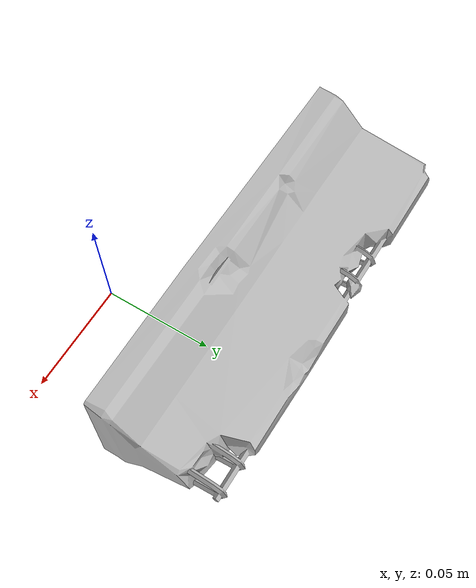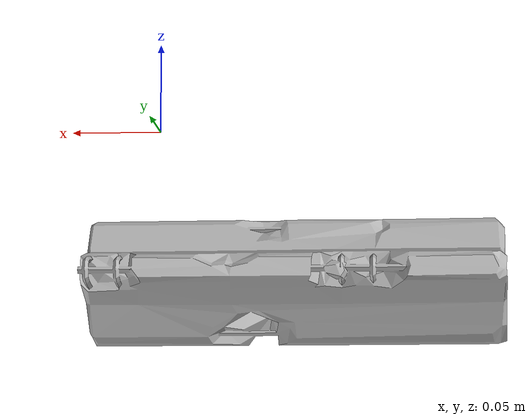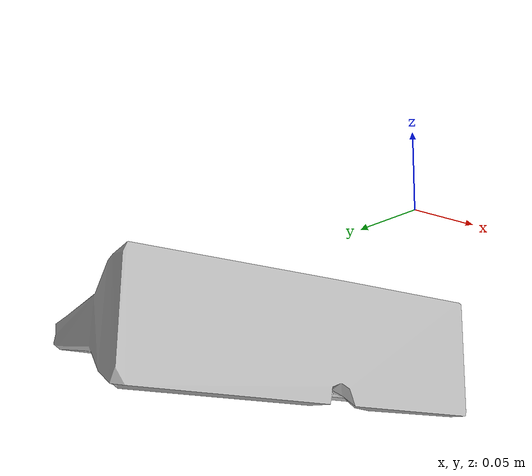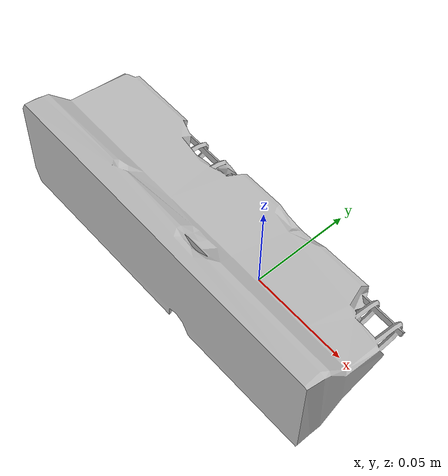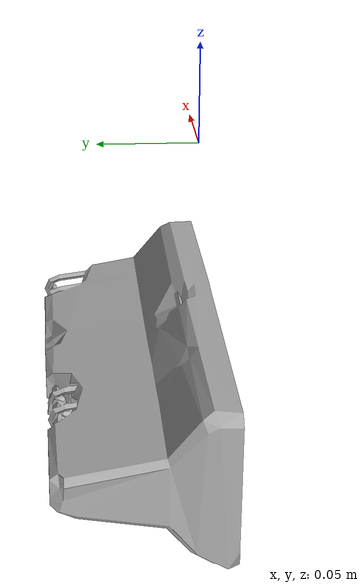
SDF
<?xml version='1.0'?>
<sdf version="1.6">
<model name="Concrete_Roadblock">
  <pose>0 0 0.0 0 0 0</pose>
  <static>false</static>
    <link name="link">
      <inertial>
        <mass>0.003</mass>
        <inertia>
          <ixx>0.16667</ixx>
          <ixy>0.0</ixy>
          <ixz>0.0</ixz>
          <iyy>0.16667</iyy>
          <iyz>0.0</iyz>
          <izz>0.16667</izz>
        </inertia>
      </inertial>
      <collision name="collision">
        <geometry>
          <mesh>
            <uri>model://Concrete_Roadblock/mesh/Concrete_Roadblock.dae</uri>
            <scale>0.03 0.03 0.03</scale>
          </mesh>
        </geometry>
      <max_contacts>10</max_contacts>
        <surface>
			<contact>
              <ode/>
            </contact>
            <bounce/>
           <friction>
              <ode>
              <mu>0.3</mu>
              <mu2>100</mu2>
              </ode>
           </friction>
      </surface>
      </collision>
      <visual name="visual">
        <geometry>
          <mesh>
            <uri>model://Concrete_Roadblock/mesh/Concrete_Roadblock.dae</uri>
            <scale>0.03 0.03 0.03</scale>
          </mesh>
        </geometry>
      </visual>
      <self_collide>0</self_collide>
        <kinematic>0</kinematic>
        <gravity>1</gravity>
    </link>
  </model>
</sdf>
